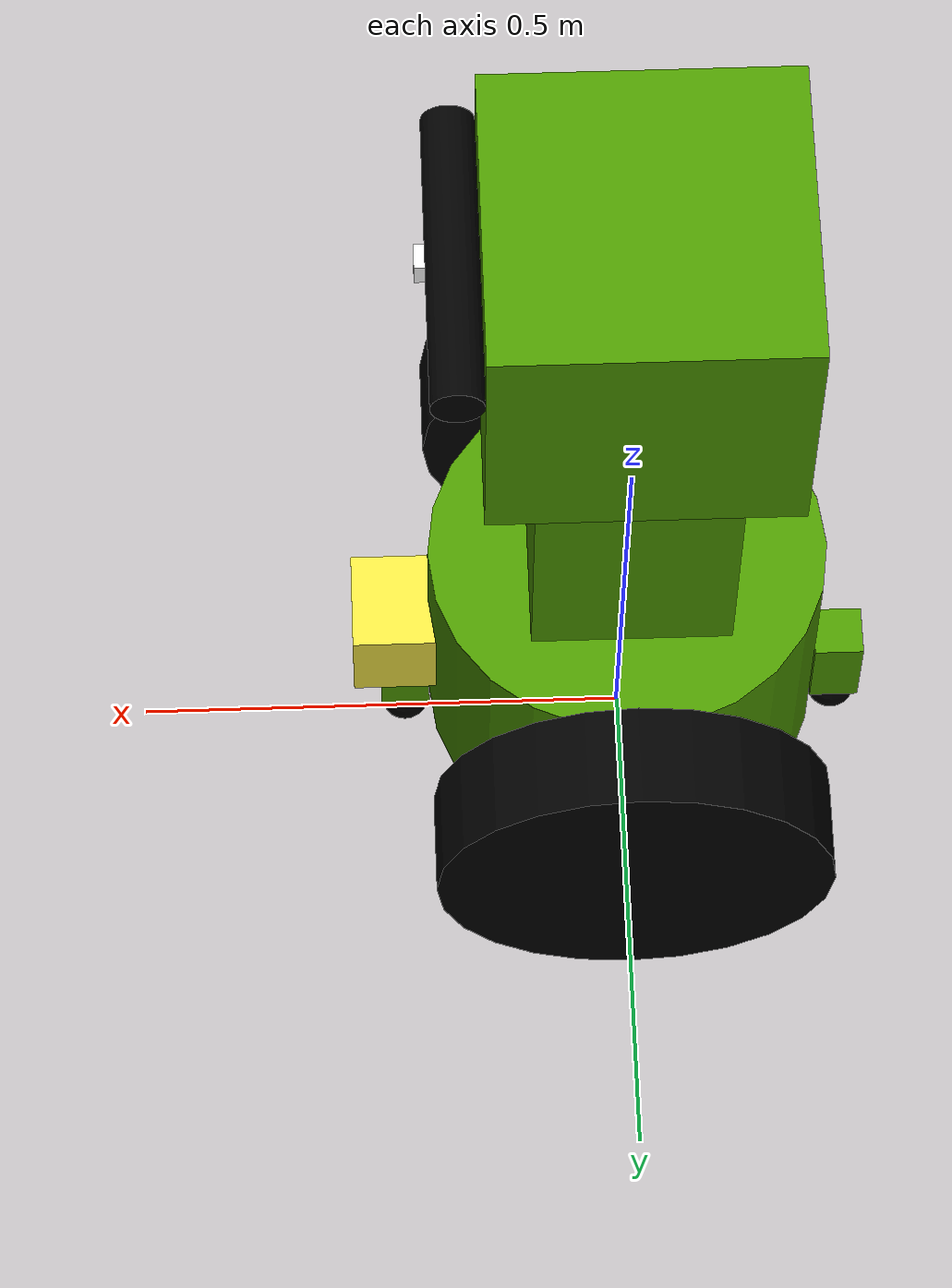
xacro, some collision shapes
<?xml version="1.0"?>
<robot name="proj_dd" xmlns:xacro="http://www.ros.org/wiki/xacro">

<!-- Xacro -->

<xacro:property name="base_r" value="0.2"/>
<xacro:property name="wheel_t" value="0.1"/>
<xacro:property name="wheel_r" value="0.2"/>

<!-- Bot -->

<!-- Body -->

  <link name="base_link">
    <visual>
      <geometry>
        <cylinder radius="${base_r}" length="0.3"/>
      </geometry>
      <origin rpy="0 0 0" xyz="0 0 0.2"/>
      <material name="lime">
        <color rgba="0.3 0.6 0 1"/>
      </material>
    </visual>
    <collision>
      <geometry>
        <cylinder radius="${base_r}" length="0.3"/>
      </geometry>
      <origin rpy="0 0 0" xyz="0 0 0.2"/>
    </collision>
    <inertial>
      <origin xyz="0.0 0.0 0.0" rpy="0.0 0.0 0.0"/>
      <mass value="10.0"/>
      <inertia ixx="0.175" ixy="0.0" ixz="0.0" iyy="0.175" iyz="0.0" izz="0.2"/>
    </inertial>

  </link>

  <link name="body">
    <visual>
      <geometry>
        <box size="0.2 0.2 0.35"/>
      </geometry>
      <origin rpy="0 0 0" xyz="0 0 0"/>
      <material name="lime">
        <color rgba="0.3 0.6 0 1"/>
      </material>
    </visual>
    <collision>
      <geometry>
        <box size="0.2 0.2 0.35"/>
      </geometry>
      <origin rpy="0 0 0" xyz="0 0 0"/>
    </collision>
    <inertial>
      <origin xyz="0.0 0.0 0.0" rpy="0.0 0.0 0.0"/>
      <mass value="3.0"/>
      <inertia ixx="0.041" ixy="0.0" ixz="0.0" iyy="0.041" iyz="0.0" izz="0.02"/>
    </inertial>

  </link>

  <joint name="base_to_body" type="fixed">
    <parent link="base_link"/>
    <child link="body"/>
    <origin xyz="0 0.0 0.525" rpy="0 0 0"/>
  </joint>

  <link name="head">
    <visual>
      <geometry>
        <box size="0.3 0.3 0.3"/>
      </geometry>
      <origin rpy="0 0 0" xyz="0 0 0"/>
      <material name="lime">
        <color rgba="0.3 0.6 0 1"/>
      </material>
    </visual>
    <collision>
      <geometry>
        <box size="0.3 0.3 0.3"/>
      </geometry>
      <origin rpy="0 0 0" xyz="0 0 0"/>
    </collision>
    <inertial>
      <origin xyz="0.0 0.0 0.0" rpy="0.0 0.0 0.0"/>
      <mass value="2.0"/>
      <inertia ixx="0.03" ixy="0.0" ixz="0.0" iyy="0.03" iyz="0.0" izz="0.03"/>
    </inertial>

  </link>

  <joint name="body_to_head" type="revolute">
    <parent link="body"/>
    <child link="head"/>
    <origin xyz="0 0.0 0.325" rpy="0 0 0"/>
    <axis xyz="0.0 0.0 1.0"/>
    <limit lower="-3.1416" upper="3.1416" effort="1000.0" velocity="0.5"/>
  </joint>

<!-- Drive wheel -->

  <link name="lwheel">
    <visual>
      <geometry>
        <cylinder length="${wheel_t}" radius="${wheel_r}"/>
      </geometry>
      <origin rpy="0 0 0" xyz="0 0 0"/>
      <material name="black">
        <color rgba="0 0 0 1"/>
      </material>
    </visual>
    <collision>
      <geometry>
        <cylinder length="${wheel_t}" radius="${wheel_r}"/>
      </geometry>
      <origin rpy="0 0 0" xyz="0 0 0"/>
    </collision>
    <inertial>
      <origin xyz="0.0 0.0 0.0" rpy="0.0 0.0 0.0"/>
      <mass value="2.0"/>
      <inertia ixx="0.022" ixy="0.0" ixz="0.0" iyy="0.022" iyz="0.0" izz="0.04"/>
    </inertial>

  </link>

  <joint name="base_to_lwheel" type="continuous">
    <parent link="base_link"/>
    <child link="lwheel"/>
    <axis xyz="0.0 0.0 1.0"/>
    <limit effort="100.0" velocity="100.0"/>
    <joint_properties damping="0.0" friction="0.0"/>
    <origin xyz="0 0.25 0.2" rpy="-1.5708 0 0"/>
  </joint>

  <link name="rwheel">
    <visual>
      <geometry>
        <cylinder length="${wheel_t}" radius="${wheel_r}"/>
      </geometry>
      <origin rpy="0 0 0" xyz="0 0 0"/>
      <material name="black">
        <color rgba="0 0 0 1"/>
      </material>
    </visual>
    <collision>
      <geometry>
        <cylinder length="${wheel_t}" radius="${wheel_r}"/>
      </geometry>
      <origin rpy="0 0 0" xyz="0 0 0"/>
    </collision>
    <inertial>
      <origin xyz="0.0 0.0 0.0" rpy="0 0 0"/>
      <mass value="2.0"/>
      <inertia ixx="0.022" ixy="0.0" ixz="0.0" iyy="0.022" iyz="0.0" izz="0.04"/>
    </inertial>
  </link>

  <joint name="base_to_rwheel" type="continuous">
    <parent link="base_link"/>
    <child link="rwheel"/>
    <axis xyz="0.0 0.0 1.0"/>
    <limit effort="100.0" velocity="100.0"/>
    <joint_properties damping="0.0" friction="0.0"/>
    <origin xyz="0 -0.25 0.2" rpy="-1.5708 0 0"/>
  </joint>

<!-- Balance wheel -->

  <link name="fwheel_attach">
    <visual>
      <geometry>
        <box size="0.05 0.05 0.1"/>
      </geometry>
      <origin rpy="0 0 0" xyz="0 0 0"/>
      <material name="lime">
        <color rgba="0.3 0.6 0 1"/>
      </material>
    </visual>
    <collision>
      <geometry>
        <box size="0.05 0.05 0.1"/>
      </geometry>
      <origin rpy="0 0 0" xyz="0 0 0"/>
    </collision>
    <inertial>
      <origin xyz="0.0 0.0 0.0" rpy="0.0 0.0 0.0"/>
      <mass value="0.5"/>
      <inertia ixx="0.0005" ixy="0.0" ixz="0.0" iyy="0.0005" iyz="0.0" izz="0.0002"/>
    </inertial>

  </link>

  <joint name="base_to_fattach" type="fixed">
    <parent link="base_link"/>
    <child link="fwheel_attach"/>
    <origin xyz="0.225 0 0.1" rpy="0 0 0"/>
  </joint>

  <link name="fwheel">
    <visual>
      <geometry>
        <sphere radius="0.025"/>
      </geometry>
      <origin rpy="0 0 0" xyz="0 0 0"/>
      <material name="black">
        <color rgba="0 0 0 1"/>
      </material>
    </visual>
    <collision>
      <geometry>
        <sphere radius="0.025"/>
      </geometry>
      <origin rpy="0 0 0" xyz="0 0 0"/>
    </collision>
    <inertial>
      <origin xyz="0.0 0.0 0.0" rpy="0.0 0.0 0.0"/>
      <mass value="0.5"/>
      <inertia ixx="0.0001" ixy="0.0" ixz="0.0" iyy="0.0001" iyz="0.0" izz="0.0001"/>
    </inertial>

  </link>

  <joint name="fwheel_attach_to_fwheel" type="continuous">
    <parent link="fwheel_attach"/>
    <child link="fwheel"/>
    <origin xyz="0 0 -0.075" rpy="0 0 0"/>
    <axis xyz="1.0 1.0 1.0"/>
    <limit effort="100.0" velocity="100.0"/>
    <joint_properties damping="0.0" friction="0.0"/>
  </joint>

  <link name="bwheel_attach">
    <visual>
      <geometry>
        <box size="0.05 0.05 0.1"/>
      </geometry>
      <origin rpy="0 0 0" xyz="0 0 0"/>
      <material name="lime">
        <color rgba="0.3 0.6 0 1"/>
      </material>
    </visual>
    <collision>
      <geometry>
        <box size="0.05 0.05 0.1"/>
      </geometry>
      <origin rpy="0 0 0" xyz="0 0 0"/>
    </collision>
    <inertial>
      <origin xyz="0.0 0.0 0.0" rpy="0.0 0.0 0.0"/>
      <mass value="0.5"/>
      <inertia ixx="0.0005" ixy="0.0" ixz="0.0" iyy="0.0005" iyz="0.0" izz="0.0002"/>
    </inertial>

  </link>

  <joint name="base_to_battach" type="fixed">
    <parent link="base_link"/>
    <child link="bwheel_attach"/>
    <origin xyz="-0.225 0 0.1" rpy="0 0 0"/>
  </joint>

  <link name="bwheel">
    <visual>
      <geometry>
        <sphere radius="0.025"/>
      </geometry>
      <origin rpy="0 0 0" xyz="0 0 0"/>
      <material name="black">
        <color rgba="0 0 0 1"/>
      </material>
    </visual>
    <collision>
      <geometry>
        <sphere radius="0.025"/>
      </geometry>
      <origin rpy="0 0 0" xyz="0 0 0"/>
    </collision>
    <inertial>
      <origin xyz="0.0 0.0 0.0" rpy="0.0 0.0 0.0"/>
      <mass value="0.5"/>
      <inertia ixx="0.0001" ixy="0.0" ixz="0.0" iyy="0.0001" iyz="0.0" izz="0.0001"/>
    </inertial>

  </link>

  <joint name="bwheel_attach_to_bwheel" type="continuous">
    <parent link="bwheel_attach"/>
    <child link="bwheel"/>
    <origin xyz="0 0 -0.075" rpy="0 0 0"/>
    <axis xyz="1.0 1.0 1.0"/>
    <limit effort="100.0" velocity="100.0"/>
    <joint_properties damping="0.0" friction="0.0"/>
  </joint>

<!-- Camera -->

  <link name="camera">
    <visual>
      <geometry>
        <cylinder radius="0.025" length="0.3"/>
      </geometry>
      <origin rpy="0 0 0" xyz="0 0 0"/>
      <material name="black">
        <color rgba="0 0 0 1"/>
      </material>
    </visual>
    <collision>
      <geometry>
        <cylinder radius="0.025" length="0.3"/>
      </geometry>
      <origin rpy="0 0 0" xyz="0 0 0"/>
    </collision>
    <inertial>
      <origin xyz="0.0 0.0 0.0" rpy="0.0 0.0 0.0"/>
      <mass value="0.1"/>
      <inertia ixx="0.0008" ixy="0.0" ixz="0.0" iyy="0.0008" iyz="0.0" izz="0.00003"/>
    </inertial>

  </link>

  <joint name="head_to_camera" type="revolute">
    <parent link="head"/>
    <child link="camera"/>
    <origin xyz="0.175 0 0.075" rpy="1.5708 0 0"/>
    <axis xyz="0.0 0.0 1.0"/>
    <limit lower="-1.0472" upper="1.0472" effort="1000.0" velocity="0.5"/>
  </joint>

    <link name="lens">
    <visual>
      <geometry>
        <box size="0.01 0.025 0.025"/>
      </geometry>
      <origin rpy="0 0 0" xyz="0 0 0"/>
      <material name="white">
        <color rgba="1 1 1 1"/>
      </material>
    </visual>
    <collision>
      <geometry>
        <box size="0.1 0.01 0.1"/>
      </geometry>
      <origin rpy="0 0 0" xyz="0 0 0"/>
    </collision>
    <inertial>
      <origin xyz="0.0 0.0 0.0" rpy="0.0 0.0 0.0"/>
      <mass value="0.05"/>
      <inertia ixx="0.000005" ixy="0.0" ixz="0.0" iyy="0.000003" iyz="0.0" izz="0.000003"/>
    </inertial>

  </link>

  <joint name="camera_to_lens" type="fixed">
    <parent link="camera"/>
    <child link="lens"/>
    <origin xyz="0.03 0 0" rpy="-1.5708 0 0"/>
  </joint>

  <joint name="hokuyo_joint" type="fixed">
    <axis xyz="0 1 0" />
    <origin xyz="0.2275 0 0.2" rpy="0 0 0"/>
    <parent link="base_link"/>
    <child link="hokuyo_link"/>
  </joint>

  <!-- Hokuyo Laser -->
  <link name="hokuyo_link">
    <collision>
      <origin xyz="0 0 0" rpy="0 0 0"/>
      <geometry>
    <box size="0.1 0.1 0.1"/>
      </geometry>
    </collision>

    <visual>
      <origin xyz="0 0 0" rpy="0 0 0"/>
      <geometry>
        <mesh filename="package://differential_drive/mesh/hokuyo.dae"/>
      </geometry>
    </visual>

    <inertial>
      <mass value="1e-5" />
      <origin xyz="0 0 0" rpy="0 0 0"/>
      <inertia ixx="1e-6" ixy="0" ixz="0" iyy="1e-6" iyz="0" izz="1e-6" />
    </inertial>
  </link>

    <!-- transmission -->
  <transmission name="cam_trans">
    <type>transmission_interface/SimpleTransmission</type>
    <actuator name="motor1">
      <mechanicalReduction>1</mechanicalReduction>
    </actuator>
    <joint name="head_to_camera">
      <hardwareInterface>hardware_interface/EffortJointInterface</hardwareInterface>
    </joint>
  </transmission>

  <transmission name="head_trans">
    <type>transmission_interface/SimpleTransmission</type>
    <actuator name="motor2">
      <mechanicalReduction>1</mechanicalReduction>
    </actuator>
    <joint name="body_to_head">
      <hardwareInterface>hardware_interface/EffortJointInterface</hardwareInterface>
    </joint>
  </transmission>

  <transmission name="left_wheel_transmission">
    <type>transmission_interface/SimpleTransmission</type>
    <joint name="base_to_lwheel">
      <hardwareInterface>hardware_interface/VelocityJointInterface</hardwareInterface>
    </joint>
    <actuator name="left_wheel_actuator">
      <mechanicalReduction>10</mechanicalReduction>
      <hardwareInterface>VelocityJointInterface</hardwareInterface>
    </actuator>
  </transmission>

  <transmission name="right_wheel_transmission">
    <type>transmission_interface/SimpleTransmission</type>
    <joint name="base_to_rwheel">
      <hardwareInterface>hardware_interface/VelocityJointInterface</hardwareInterface>
    </joint>
    <actuator name="right_wheel_actuator">
      <mechanicalReduction>10</mechanicalReduction>
      <hardwareInterface>VelocityJointInterface</hardwareInterface>
    </actuator>
  </transmission>

   <transmission name="front_wheel_transmission">
    <type>transmission_interface/SimpleTransmission</type>
    <joint name="fwheel_attach_to_fwheel">
      <hardwareInterface>hardware_interface/VelocityJointInterface</hardwareInterface>
    </joint>
    <actuator name="front_wheel_actuator">
      <mechanicalReduction>1</mechanicalReduction>
      <hardwareInterface>VelocityJointInterface</hardwareInterface>
    </actuator>
  </transmission>

   <transmission name="back_wheel_transmission">
    <type>transmission_interface/SimpleTransmission</type>
    <joint name="bwheel_attach_to_bwheel">
      <hardwareInterface>hardware_interface/VelocityJointInterface</hardwareInterface>
    </joint>
    <actuator name="back_wheel_actuator">
      <mechanicalReduction>1</mechanicalReduction>
      <hardwareInterface>VelocityJointInterface</hardwareInterface>
    </actuator>
  </transmission>

  <!-- camera -->
  <gazebo reference="lens">
    <sensor type="camera" name="camera1">
      <update_rate>30.0</update_rate>
      <camera name="head">
        <horizontal_fov>1.3962634</horizontal_fov>
        <image>
          <width>800</width>
          <height>800</height>
          <format>R8G8B8</format>
        </image>
        <clip>
          <near>0.02</near>
          <far>300</far>
        </clip>
      </camera>
      <plugin name="camera_controller" filename="libgazebo_ros_camera.so">
        <alwaysOn>true</alwaysOn>
        <updateRate>0.0</updateRate>
        <cameraName>robot/camera1</cameraName>
        <imageTopicName>image_raw</imageTopicName>
        <cameraInfoTopicName>camera_info</cameraInfoTopicName>
        <frameName>lens</frameName>
        <hackBaseline>0.07</hackBaseline>
        <distortionK1>0.0</distortionK1>
        <distortionK2>0.0</distortionK2>
        <distortionK3>0.0</distortionK3>
        <distortionT1>0.0</distortionT1>
        <distortionT2>0.0</distortionT2>
      </plugin>
    </sensor>
  </gazebo>

  <!-- ROS Control plugin for Gazebo -->
  <gazebo>
    <plugin name="gazebo_ros_control" filename="libgazebo_ros_control.so"/>
  </gazebo>

    <!-- hokuyo -->
  <gazebo reference="hokuyo_link">
    <sensor type="gpu_ray" name="head_hokuyo_sensor">
      <pose>0 0 0 0 0 0</pose>
      <visualize>false</visualize>
      <update_rate>50</update_rate>
      <ray>
        <scan>
          <horizontal>
            <samples>720</samples>
            <resolution>1</resolution>
            <min_angle>-1.570796</min_angle>
            <max_angle>1.570796</max_angle>
          </horizontal>
        </scan>
        <range>
          <min>0.10</min>
          <max>30.0</max>
          <resolution>0.01</resolution>
        </range>
        <noise>
          <type>gaussian</type>
          <mean>0.0</mean>
          <stddev>0.01</stddev>
        </noise>
      </ray>
      <plugin name="gazebo_ros_head_hokuyo_controller" filename="libgazebo_ros_gpu_laser.so">
        <topicName>/laser/scan</topicName>
        <frameName>hokuyo_link</frameName>
      </plugin>
    </sensor>
  </gazebo>

<!-- Material -->

  <gazebo reference="base_link">
    <material>
      Gazebo/Green
    </material>
    <mu1>0.1</mu1>
    <mu2>0.1</mu2>
  </gazebo>
  <gazebo reference="body">
    <material>
      Gazebo/Green
    </material>
    <mu1>0.1</mu1>
    <mu2>0.1</mu2>
  </gazebo>
  <gazebo reference="head">
    <material>
      Gazebo/Green
    </material>
    <mu1>0.1</mu1>
    <mu2>0.1</mu2>
  </gazebo>
  <gazebo reference="fwheel_attach">
    <material>
      Gazebo/Green
    </material>
    <mu1>0.1</mu1>
    <mu2>0.1</mu2>
  </gazebo>
  <gazebo reference="bwheel_attach">
    <material>
      Gazebo/Green
    </material>
    <mu1>0.1</mu1>
    <mu2>0.1</mu2>
  </gazebo>
  <gazebo reference="fwheel">
    <material>
      Gazebo/Black
    </material>
    <mu1>0.1</mu1>
    <mu2>0.1</mu2>
  </gazebo>
  <gazebo reference="bwheel">
    <material>
      Gazebo/Black
    </material>
    <mu1>0.1</mu1>
    <mu2>0.1</mu2>
  </gazebo>
  <gazebo reference="lwheel">
    <material>
      Gazebo/Black
    </material>
    <mu1>2</mu1>
    <mu2>2</mu2>
  </gazebo>
  <gazebo reference="rwheel">
    <material>
      Gazebo/Black
    </material>
    <mu1>2</mu1>
    <mu2>2</mu2>
  </gazebo>
  <gazebo reference="camera">
    <material>
      Gazebo/Black
    </material>
    <mu1>0.1</mu1>
    <mu2>0.1</mu2>
  </gazebo>
  <gazebo reference="lens">
    <material>
      Gazebo/Black
    </material>
    <mu1>0.1</mu1>
    <mu2>0.1</mu2>
  </gazebo>
  <gazebo reference="hokuyo_link">
    <mu1>0.1</mu1>
    <mu2>0.1</mu2>
  </gazebo>
</robot>
